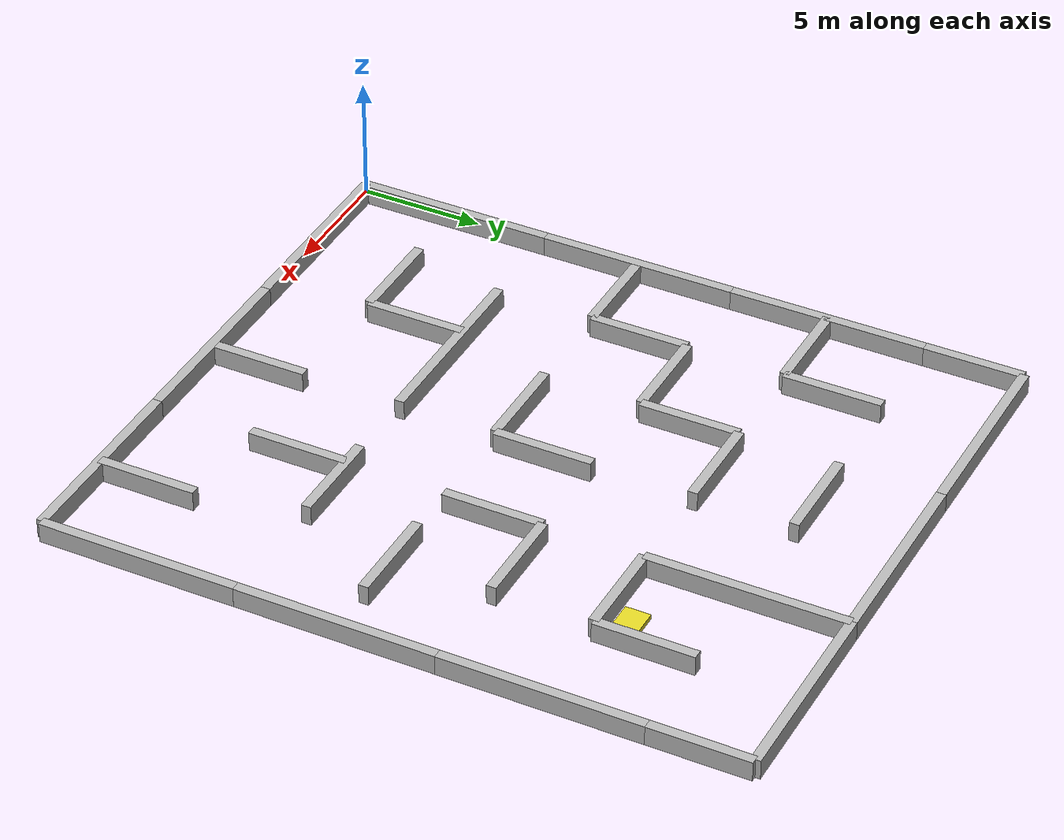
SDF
<sdf version="1.5">
 <world name="default">
  <scene><sky><clouds><speed>3</speed></clouds></sky></scene>
  <plugin name="ros_interface_plugin" filename="librotors_gazebo_ros_interface_plugin.so"/>
  <physics name="default_physics" default="0" type="ode">
   <gravity>0 0 -9.8066</gravity>
   <ode>
    <solver>
     <type>quick</type>
     <iters>35</iters>
     <sor>1.3</sor>
     <use_dynamic_moi_rescaling>0</use_dynamic_moi_rescaling>
    </solver>
    <constraints>
     <cfm>0</cfm>
     <erp>0.2</erp>
     <contact_max_correcting_vel>100</contact_max_correcting_vel>
     <contact_surface_layer>0.001</contact_surface_layer>
    </constraints>
   </ode>
   <max_step_size>0.004</max_step_size>
   <real_time_factor>1</real_time_factor>
   <real_time_update_rate>250</real_time_update_rate>
   <magnetic_field>6.0e-6 2.3e-5 -4.2e-5</magnetic_field>
  </physics>
  <include><uri>model://sun_2</uri></include>
  <include><static>true</static><uri>model://smaze2d</uri></include>
 </world>
</sdf>

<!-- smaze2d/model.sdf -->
<sdf version="1.5">
  <model name="smaze2d">

    <include>
      <name>w1</name>
      <pose>0 4 0 0 0 1.5708</pose>
      <uri>model://smaze_wall</uri>
    </include>
    <include>
      <name>w2</name>
      <pose>0 12 0 0 0 1.5708</pose>
      <uri>model://smaze_wall</uri>
    </include>
    <include>
      <name>w3</name>
      <pose>0 20 0 0 0 1.5708</pose>
      <uri>model://smaze_wall</uri>
    </include>
    <include>
      <name>w4</name>
      <pose>0 26 0 0 0 1.5708</pose>
      <uri>model://smaze_wall_short</uri>
    </include>

    <include>
      <name>w5</name>
      <pose>24 4 0 0 0 1.5708</pose>
      <uri>model://smaze_wall</uri>
    </include>
    <include>
      <name>w6</name>
      <pose>24 12 0 0 0 1.5708</pose>
      <uri>model://smaze_wall</uri>
    </include>
    <include>
      <name>w7</name>
      <pose>24 20 0 0 0 1.5708</pose>
      <uri>model://smaze_wall</uri>
    </include>
    <include>
      <name>w8</name>
      <pose>24 26 0 0 0 1.5708</pose>
      <uri>model://smaze_wall_short</uri>
    </include>

    <include>
      <name>w11</name>
      <pose>4 0 0 0 0 0</pose>
      <uri>model://smaze_wall</uri>
    </include>
    <include>
      <name>w12</name>
      <pose>12 0 0 0 0 0</pose>
      <uri>model://smaze_wall</uri>
    </include>
    <include>
      <name>w13</name>
      <pose>20 0 0 0 0 0</pose>
      <uri>model://smaze_wall</uri>
    </include>

    <include>
      <name>w14</name>
      <pose>4 28 0 0 0 0</pose>
      <uri>model://smaze_wall</uri>
    </include>
    <include>
      <name>w15</name>
      <pose>12 28 0 0 0 0</pose>
      <uri>model://smaze_wall</uri>
    </include>
    <include>
      <name>w16</name>
      <pose>20 28 0 0 0 0</pose>
      <uri>model://smaze_wall</uri>
    </include>

    <include>
      <name>w17</name>
      <pose>10 24 0 0 0 0</pose>
      <uri>model://smaze_wall_short</uri>
    </include>
    <include>
      <name>w18</name>
      <pose>10 12 0 0 0 0</pose>
      <uri>model://smaze_wall_short</uri>
    </include>
    <include>
      <name>w19</name>
      <pose>8 8 0 0 0 0</pose>
      <uri>model://smaze_wall</uri>
    </include>
    <include>
      <name>w20</name>
      <pose>5 4 0 0 0 0</pose>
      <uri>model://smaze_wall_short</uri>
    </include>
    <include>
      <name>w21</name>
      <pose>17 8 0 0 0 0</pose>
      <uri>model://smaze_wall_short</uri>
    </include>
    <include>
      <name>w22</name>
      <pose>20 12 0 0 0 0</pose>
      <uri>model://smaze_wall_short</uri>
    </include>
    <include>
      <name>w23</name>
      <pose>16 24 0 0 0 1.5708</pose>
      <uri>model://smaze_wall</uri>
    </include>

    <include>
      <name>s1</name>
      <pose>20 22 0 0 0 1.5708</pose>
      <uri>model://smaze_wall_short</uri>
    </include>
    <include>
      <name>s2</name>
      <pose>16 14 0 0 0 1.5708</pose>
      <uri>model://smaze_wall_short</uri>
    </include>
    <include>
      <name>s3</name>
      <pose>16 6 0 0 0 1.5708</pose>
      <uri>model://smaze_wall_short</uri>
    </include>
    <include>
      <name>s4</name>
      <pose>20 2 0 0 0 1.5708</pose>
      <uri>model://smaze_wall_short</uri>
    </include>
    <include>
      <name>s5</name>
      <pose>12 2 0 0 0 1.5708</pose>
      <uri>model://smaze_wall_short</uri>
    </include>
    <include>
      <name>s6</name>
      <pose>7 6 0 0 0 1.5708</pose>
      <uri>model://smaze_wall_short</uri>
    </include>
    <include>
      <name>s7</name>
      <pose>4 14 0 0 0 1.5708</pose>
      <uri>model://smaze_wall_short</uri>
    </include>
    <include>
      <name>s8</name>
      <pose>8 18 0 0 0 1.5708</pose>
      <uri>model://smaze_wall_short</uri>
    </include>
    <include>
      <name>s9</name>
      <pose>4 22 0 0 0 1.5708</pose>
      <uri>model://smaze_wall_short</uri>
    </include>
    <include>
      <name>s10</name>
      <pose>12 14 0 0 0 1.5708</pose>
      <uri>model://smaze_wall_short</uri>
    </include>

    <include>
      <name>v1</name>
      <pose>2 12 0 0 0 0</pose>
      <uri>model://smaze_wall_short</uri>
    </include>
    <include>
      <name>v2</name>
      <pose>2 20 0 0 0 0</pose>
      <uri>model://smaze_wall_short</uri>
    </include>
    <include>
      <name>v3</name>
      <pose>6 16 0 0 0 0</pose>
      <uri>model://smaze_wall_short</uri>
    </include>
    <include>
      <name>v4</name>
      <pose>10 20 0 0 0 0</pose>
      <uri>model://smaze_wall_short</uri>
    </include>
    <include>
      <name>v5</name>
      <pose>18 16 0 0 0 0</pose>
      <uri>model://smaze_wall_short</uri>
    </include>
    <include>
      <name>v6</name>
      <pose>18 20 0 0 0 0</pose>
      <uri>model://smaze_wall_short</uri>
    </include>

    <include>
      <name>b1</name>
      <pose>19 21 -0.5 0 0 0</pose>
      <uri>model://marker_block</uri>
    </include>

  </model>
</sdf>

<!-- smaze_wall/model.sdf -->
<sdf version="1.5">
  <model name="smaze_wall">
    <static>true</static>
    <link name="link">
      <pose>0 0 0 0 0 0</pose>
      <collision name="collision">
        <geometry>
          <box>
            <size>8 0.4 0.8</size>
          </box>
        </geometry>
      </collision>
      <visual name="visual">
        <geometry>
          <box>
            <size>8 0.4 0.8</size>
          </box>
        </geometry>
        <material>
          <script>
            <uri>model://smaze_wall/materials/scripts</uri>
            <uri>model://smaze_wall/materials/textures</uri>
            <name>vrc/smaze_wall</name>
          </script>
        </material>
      </visual>
    </link>
  </model>
</sdf>

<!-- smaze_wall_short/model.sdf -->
<sdf version="1.5">
  <model name="smaze_wall_short">
    <static>true</static>
    <link name="link">
      <pose>0 0 0 0 0 0</pose>
      <collision name="collision">
        <geometry>
          <box>
            <size>4 0.4 0.8</size>
          </box>
        </geometry>
      </collision>
      <visual name="visual">
        <geometry>
          <box>
            <size>4 0.4 0.8</size>
          </box>
        </geometry>
        <material>
          <script>
            <uri>model://smaze_wall_short/materials/scripts</uri>
            <uri>model://smaze_wall_short/materials/textures</uri>
            <name>vrc/smaze_wall_short</name>
          </script>
        </material>
      </visual>
    </link>
  </model>
</sdf>

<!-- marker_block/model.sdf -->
<sdf version="1.5">
  <model name="marker_block">
    <static>true</static>
    <link name="link">
      <pose>0 0 0.5 0 0 0</pose>
      <collision name="collision">
        <geometry>
          <box>
            <size>1 1 0.2</size>
          </box>
        </geometry>
      </collision>
      <visual name="visual">
        <geometry>
          <box>
            <size>1 1 0.2</size>
          </box>
        </geometry>
        <material>
          <script>
              <uri>file://media/materials/scripts/gazebo.material</uri>
              <name>Gazebo/Yellow</name>
          </script>
        </material>
      </visual>
    </link>
  </model>
</sdf>
